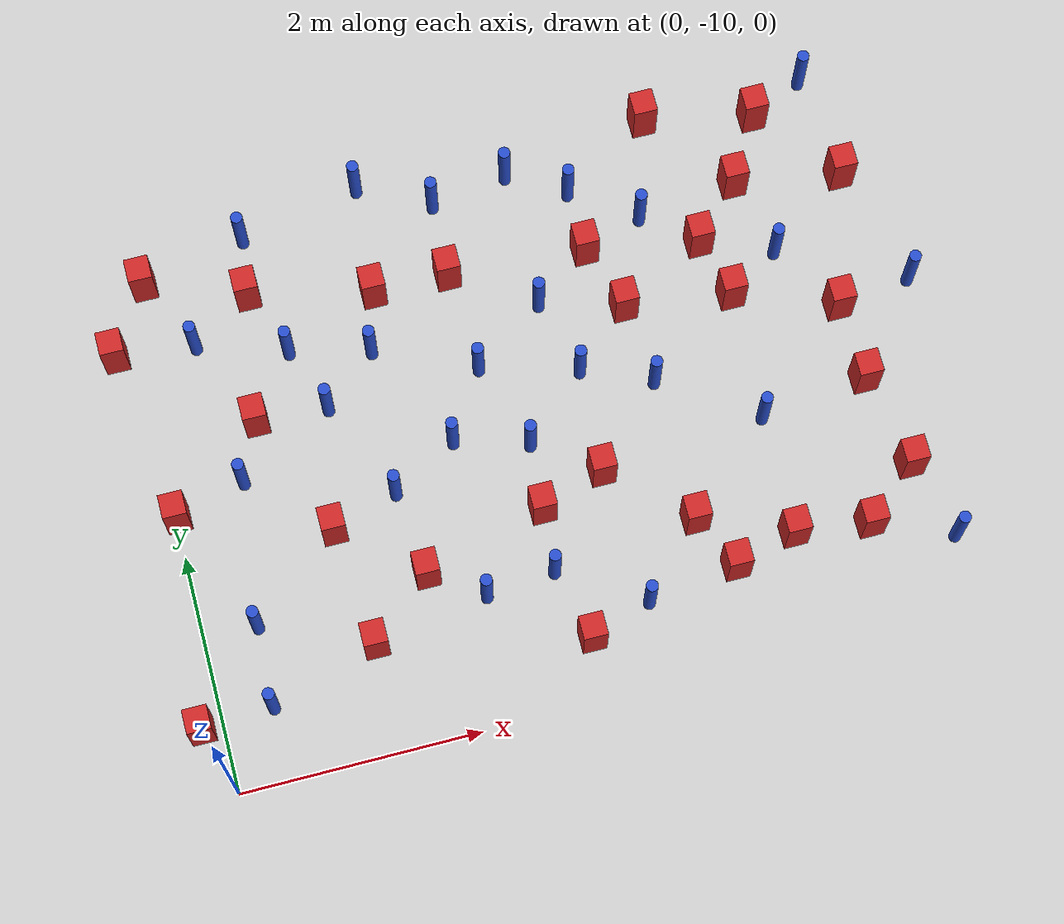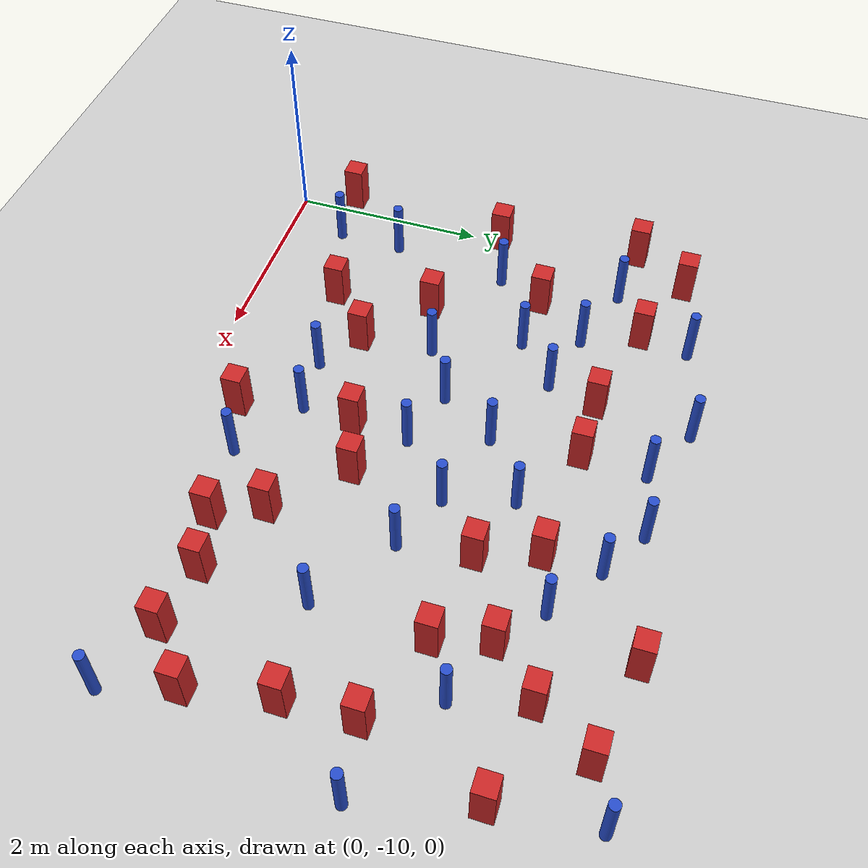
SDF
<sdf version="1.6">
 <world name="default">
  <model name="ground_plane">
   <static>1</static>
   <link name="link">
    <collision name="collision">
     <geometry><plane><normal>0 0 1</normal><size>100 100</size></plane></geometry>
     <surface><friction><ode><mu>100</mu><mu2>50</mu2></ode></friction></surface>
    </collision>
    <visual name="visual">
     <cast_shadows>0</cast_shadows>
     <geometry><plane><normal>0 0 1</normal><size>100 100</size></plane></geometry>
     <material>
      <ambient>1.0 1.0 1.0 1.0</ambient>
      <diffuse>0.8 0.8 0.8 1.0</diffuse>
      <specular>0.01 0.01 0.01 1.000000</specular>
     </material>
    </visual>
   </link>
  </model>
  <model name="square_post_obstacle7">
   <static>true</static>
   <pose>5.20359295091 -5.96778097333 -4.36207812815e-07 3.75137919937e-06 9.77721102514e-07 2.47381364184e-05</pose>
   <link name="link">
    <pose>0 0 0.25 0 -0 0</pose>
    <inertial>
     <mass>100</mass>
     <inertia>
      <ixx>0.166667</ixx>
      <ixy>0</ixy>
      <ixz>0</ixz>
      <iyy>0.166667</iyy>
      <iyz>0</iyz>
      <izz>0.166667</izz>
     </inertia>
    </inertial>
    <collision name="collision"><geometry><box><size>.2 .2 .5</size></box></geometry></collision>
    <visual name="visual">
     <geometry><box><size>.2 .2 .5</size></box></geometry>
     <material>
      <script><name>Gazebo/Red</name><uri>file://media/materials/scripts/gazebo.material</uri></script>
     </material>
    </visual>
   </link>
  </model>
  <model name="pole_obstacle10">
   <static>true</static>
   <pose>2.30417689854 -8.93807566385 -3.09024884848e-07 -7.19054271902e-07 -2.11315075199e-07 -1.93935509286e-07</pose>
   <link name="link">
    <pose>0 0 0.3 0 -0 0</pose>
    <inertial>
     <mass>1</mass>
     <inertia><ixx>0.145833</ixx><ixy>0</ixy><ixz>0</ixz><iyy>0.145833</iyy><iyz>0</iyz><izz>0.125</izz></inertia>
    </inertial>
    <collision name="collision">
     <geometry><cylinder><radius>0.05</radius><length>.6</length></cylinder></geometry>
    </collision>
    <visual name="visual">
     <geometry><cylinder><radius>0.05</radius><length>.6</length></cylinder></geometry>
     <material>
      <script><name>Gazebo/Blue</name><uri>file://media/materials/scripts/gazebo.material</uri></script>
     </material>
    </visual>
   </link>
  </model>
  <model name="pole_obstacle11">
   <static>true</static>
   <pose>0.478394050941 -6.26336523896 -3.09024884793e-07 -7.19054271912e-07 -2.11315075128e-07 -1.9393550926e-07</pose>
   <link name="link">
    <pose>0 0 0.3 0 -0 0</pose>
    <inertial>
     <mass>1</mass>
     <inertia><ixx>0.145833</ixx><ixy>0</ixy><ixz>0</ixz><iyy>0.145833</iyy><iyz>0</iyz><izz>0.125</izz></inertia>
    </inertial>
    <collision name="collision">
     <geometry><cylinder><radius>0.05</radius><length>.6</length></cylinder></geometry>
    </collision>
    <visual name="visual">
     <geometry><cylinder><radius>0.05</radius><length>.6</length></cylinder></geometry>
     <material>
      <script><name>Gazebo/Blue</name><uri>file://media/materials/scripts/gazebo.material</uri></script>
     </material>
    </visual>
   </link>
  </model>
  <model name="pole_obstacle13">
   <static>true</static>
   <pose>3.82998735341 -5.70305099585 -3.09024884793e-07 -7.19054271912e-07 -2.11315075134e-07 -1.93935509266e-07</pose>
   <link name="link">
    <pose>0 0 0.3 0 -0 0</pose>
    <inertial>
     <mass>1</mass>
     <inertia><ixx>0.145833</ixx><ixy>0</ixy><ixz>0</ixz><iyy>0.145833</iyy><iyz>0</iyz><izz>0.125</izz></inertia>
    </inertial>
    <collision name="collision">
     <geometry><cylinder><radius>0.05</radius><length>.6</length></cylinder></geometry>
    </collision>
    <visual name="visual">
     <geometry><cylinder><radius>0.05</radius><length>.6</length></cylinder></geometry>
     <material>
      <script><name>Gazebo/Blue</name><uri>file://media/materials/scripts/gazebo.material</uri></script>
     </material>
    </visual>
   </link>
  </model>
  <model name="square_post_obstacle23">
   <static>true</static>
   <pose>5.78915703853 -7.91855140705 -4.36207812815e-07 3.75137919937e-06 9.77721102514e-07 2.47381364184e-05</pose>
   <link name="link">
    <pose>0 0 0.25 0 -0 0</pose>
    <inertial>
     <mass>100</mass>
     <inertia>
      <ixx>0.166667</ixx>
      <ixy>0</ixy>
      <ixz>0</ixz>
      <iyy>0.166667</iyy>
      <iyz>0</iyz>
      <izz>0.166667</izz>
     </inertia>
    </inertial>
    <collision name="collision"><geometry><box><size>.2 .2 .5</size></box></geometry></collision>
    <visual name="visual">
     <geometry><box><size>.2 .2 .5</size></box></geometry>
     <material>
      <script><name>Gazebo/Red</name><uri>file://media/materials/scripts/gazebo.material</uri></script>
     </material>
    </visual>
   </link>
  </model>
  <model name="pole_obstacle17">
   <static>true</static>
   <pose>2.69220364741 -5.52727112073 -3.09024884793e-07 -7.19054271912e-07 -2.11315075134e-07 -1.93935509266e-07</pose>
   <link name="link">
    <pose>0 0 0.3 0 -0 0</pose>
    <inertial>
     <mass>1</mass>
     <inertia><ixx>0.145833</ixx><ixy>0</ixy><ixz>0</ixz><iyy>0.145833</iyy><iyz>0</iyz><izz>0.125</izz></inertia>
    </inertial>
    <collision name="collision">
     <geometry><cylinder><radius>0.05</radius><length>.6</length></cylinder></geometry>
    </collision>
    <visual name="visual">
     <geometry><cylinder><radius>0.05</radius><length>.6</length></cylinder></geometry>
     <material>
      <script><name>Gazebo/Blue</name><uri>file://media/materials/scripts/gazebo.material</uri></script>
     </material>
    </visual>
   </link>
  </model>
  <model name="square_post_obstacle28">
   <static>true</static>
   <pose>0.997454960169 -5.92725323505 -4.36207812815e-07 3.75137919937e-06 9.77721102514e-07 2.47381364184e-05</pose>
   <link name="link">
    <pose>0 0 0.25 0 -0 0</pose>
    <inertial>
     <mass>100</mass>
     <inertia>
      <ixx>0.166667</ixx>
      <ixy>0</ixy>
      <ixz>0</ixz>
      <iyy>0.166667</iyy>
      <iyz>0</iyz>
      <izz>0.166667</izz>
     </inertia>
    </inertial>
    <collision name="collision"><geometry><box><size>.2 .2 .5</size></box></geometry></collision>
    <visual name="visual">
     <geometry><box><size>.2 .2 .5</size></box></geometry>
     <material>
      <script><name>Gazebo/Red</name><uri>file://media/materials/scripts/gazebo.material</uri></script>
     </material>
    </visual>
   </link>
  </model>
  <model name="pole_obstacle32">
   <static>true</static>
   <pose>1.22012202831 -6.49995804793 -3.09024884793e-07 -7.19054271912e-07 -2.11315075134e-07 -1.93935509265e-07</pose>
   <link name="link">
    <pose>0 0 0.3 0 -0 0</pose>
    <inertial>
     <mass>1</mass>
     <inertia><ixx>0.145833</ixx><ixy>0</ixy><ixz>0</ixz><iyy>0.145833</iyy><iyz>0</iyz><izz>0.125</izz></inertia>
    </inertial>
    <collision name="collision">
     <geometry><cylinder><radius>0.05</radius><length>.6</length></cylinder></geometry>
    </collision>
    <visual name="visual">
     <geometry><cylinder><radius>0.05</radius><length>.6</length></cylinder></geometry>
     <material>
      <script><name>Gazebo/Blue</name><uri>file://media/materials/scripts/gazebo.material</uri></script>
     </material>
    </visual>
   </link>
  </model>
  <model name="pole_obstacle37">
   <static>true</static>
   <pose>2.09771087382 -5.22382036348 -3.09024884793e-07 -7.19054271912e-07 -2.11315075134e-07 -1.93935509266e-07</pose>
   <link name="link">
    <pose>0 0 0.3 0 -0 0</pose>
    <inertial>
     <mass>1</mass>
     <inertia><ixx>0.145833</ixx><ixy>0</ixy><ixz>0</ixz><iyy>0.145833</iyy><iyz>0</iyz><izz>0.125</izz></inertia>
    </inertial>
    <collision name="collision">
     <geometry><cylinder><radius>0.05</radius><length>.6</length></cylinder></geometry>
    </collision>
    <visual name="visual">
     <geometry><cylinder><radius>0.05</radius><length>.6</length></cylinder></geometry>
     <material>
      <script><name>Gazebo/Blue</name><uri>file://media/materials/scripts/gazebo.material</uri></script>
     </material>
    </visual>
   </link>
  </model>
  <model name="square_post_obstacle38">
   <static>true</static>
   <pose>3.83533088985 -6.24117521695 -4.36207812815e-07 3.75137919937e-06 9.77721102514e-07 2.47381364184e-05</pose>
   <link name="link">
    <pose>0 0 0.25 0 -0 0</pose>
    <inertial>
     <mass>100</mass>
     <inertia>
      <ixx>0.166667</ixx>
      <ixy>0</ixy>
      <ixz>0</ixz>
      <iyy>0.166667</iyy>
      <iyz>0</iyz>
      <izz>0.166667</izz>
     </inertia>
    </inertial>
    <collision name="collision"><geometry><box><size>.2 .2 .5</size></box></geometry></collision>
    <visual name="visual">
     <geometry><box><size>.2 .2 .5</size></box></geometry>
     <material>
      <script><name>Gazebo/Red</name><uri>file://media/materials/scripts/gazebo.material</uri></script>
     </material>
    </visual>
   </link>
  </model>
  <model name="square_post_obstacle54">
   <static>true</static>
   <pose>3.47289039859 -8.15258904208 -4.36207812815e-07 3.75137919937e-06 9.77721102514e-07 2.47381364184e-05</pose>
   <link name="link">
    <pose>0 0 0.25 0 -0 0</pose>
    <inertial>
     <mass>100</mass>
     <inertia>
      <ixx>0.166667</ixx>
      <ixy>0</ixy>
      <ixz>0</ixz>
      <iyy>0.166667</iyy>
      <iyz>0</iyz>
      <izz>0.166667</izz>
     </inertia>
    </inertial>
    <collision name="collision"><geometry><box><size>.2 .2 .5</size></box></geometry></collision>
    <visual name="visual">
     <geometry><box><size>.2 .2 .5</size></box></geometry>
     <material>
      <script><name>Gazebo/Red</name><uri>file://media/materials/scripts/gazebo.material</uri></script>
     </material>
    </visual>
   </link>
  </model>
  <model name="square_post_obstacle58">
   <static>true</static>
   <pose>6.1023084619 -6.11505757808 -4.36207812815e-07 3.75137919937e-06 9.77721102514e-07 2.47381364184e-05</pose>
   <link name="link">
    <pose>0 0 0.25 0 -0 0</pose>
    <inertial>
     <mass>100</mass>
     <inertia>
      <ixx>0.166667</ixx>
      <ixy>0</ixy>
      <ixz>0</ixz>
      <iyy>0.166667</iyy>
      <iyz>0</iyz>
      <izz>0.166667</izz>
     </inertia>
    </inertial>
    <collision name="collision"><geometry><box><size>.2 .2 .5</size></box></geometry></collision>
    <visual name="visual">
     <geometry><box><size>.2 .2 .5</size></box></geometry>
     <material>
      <script><name>Gazebo/Red</name><uri>file://media/materials/scripts/gazebo.material</uri></script>
     </material>
    </visual>
   </link>
  </model>
  <model name="pole_obstacle64">
   <static>true</static>
   <pose>3.34068840802 -6.61067060702 -3.09024884793e-07 -7.19054271912e-07 -2.11315075134e-07 -1.93935509266e-07</pose>
   <link name="link">
    <pose>0 0 0.3 0 -0 0</pose>
    <inertial>
     <mass>1</mass>
     <inertia><ixx>0.145833</ixx><ixy>0</ixy><ixz>0</ixz><iyy>0.145833</iyy><iyz>0</iyz><izz>0.125</izz></inertia>
    </inertial>
    <collision name="collision">
     <geometry><cylinder><radius>0.05</radius><length>.6</length></cylinder></geometry>
    </collision>
    <visual name="visual">
     <geometry><cylinder><radius>0.05</radius><length>.6</length></cylinder></geometry>
     <material>
      <script><name>Gazebo/Blue</name><uri>file://media/materials/scripts/gazebo.material</uri></script>
     </material>
    </visual>
   </link>
  </model>
  <model name="square_post_obstacle68">
   <static>true</static>
   <pose>1.33668838748 -9.10034123669 -4.36207812815e-07 3.75137919937e-06 9.77721102514e-07 2.47381364184e-05</pose>
   <link name="link">
    <pose>0 0 0.25 0 -0 0</pose>
    <inertial>
     <mass>100</mass>
     <inertia>
      <ixx>0.166667</ixx>
      <ixy>0</ixy>
      <ixz>0</ixz>
      <iyy>0.166667</iyy>
      <iyz>0</iyz>
      <izz>0.166667</izz>
     </inertia>
    </inertial>
    <collision name="collision"><geometry><box><size>.2 .2 .5</size></box></geometry></collision>
    <visual name="visual">
     <geometry><box><size>.2 .2 .5</size></box></geometry>
     <material>
      <script><name>Gazebo/Red</name><uri>file://media/materials/scripts/gazebo.material</uri></script>
     </material>
    </visual>
   </link>
  </model>
  <model name="square_post_obstacle71">
   <static>true</static>
   <pose>3.03948551087 -9.4839503843 -4.36207812815e-07 3.75137919937e-06 9.77721102514e-07 2.47381364184e-05</pose>
   <link name="link">
    <pose>0 0 0.25 0 -0 0</pose>
    <inertial>
     <mass>100</mass>
     <inertia>
      <ixx>0.166667</ixx>
      <ixy>0</ixy>
      <ixz>0</ixz>
      <iyy>0.166667</iyy>
      <iyz>0</iyz>
      <izz>0.166667</izz>
     </inertia>
    </inertial>
    <collision name="collision"><geometry><box><size>.2 .2 .5</size></box></geometry></collision>
    <visual name="visual">
     <geometry><box><size>.2 .2 .5</size></box></geometry>
     <material>
      <script><name>Gazebo/Red</name><uri>file://media/materials/scripts/gazebo.material</uri></script>
     </material>
    </visual>
   </link>
  </model>
  <model name="square_post_obstacle73">
   <static>true</static>
   <pose>0.173606080366 -5.62563306703 -4.36207812815e-07 3.75137919937e-06 9.77721102514e-07 2.47381364184e-05</pose>
   <link name="link">
    <pose>0 0 0.25 0 -0 0</pose>
    <inertial>
     <mass>100</mass>
     <inertia>
      <ixx>0.166667</ixx>
      <ixy>0</ixy>
      <ixz>0</ixz>
      <iyy>0.166667</iyy>
      <iyz>0</iyz>
      <izz>0.166667</izz>
     </inertia>
    </inertial>
    <collision name="collision"><geometry><box><size>.2 .2 .5</size></box></geometry></collision>
    <visual name="visual">
     <geometry><box><size>.2 .2 .5</size></box></geometry>
     <material>
      <script><name>Gazebo/Red</name><uri>file://media/materials/scripts/gazebo.material</uri></script>
     </material>
    </visual>
   </link>
  </model>
  <model name="square_post_obstacle75">
   <static>true</static>
   <pose>-0.170981337086 -9.43313442548 -4.36207812815e-07 3.75137919937e-06 9.77721102514e-07 2.47381364184e-05</pose>
   <link name="link">
    <pose>0 0 0.25 0 -0 0</pose>
    <inertial>
     <mass>100</mass>
     <inertia>
      <ixx>0.166667</ixx>
      <ixy>0</ixy>
      <ixz>0</ixz>
      <iyy>0.166667</iyy>
      <iyz>0</iyz>
      <izz>0.166667</izz>
     </inertia>
    </inertial>
    <collision name="collision"><geometry><box><size>.2 .2 .5</size></box></geometry></collision>
    <visual name="visual">
     <geometry><box><size>.2 .2 .5</size></box></geometry>
     <material>
      <script><name>Gazebo/Red</name><uri>file://media/materials/scripts/gazebo.material</uri></script>
     </material>
    </visual>
   </link>
  </model>
  <model name="pole_obstacle70">
   <static>true</static>
   <pose>2.35486851598 -7.60048989996 -3.09024884793e-07 -7.19054271912e-07 -2.11315075134e-07 -1.93935509266e-07</pose>
   <link name="link">
    <pose>0 0 0.3 0 -0 0</pose>
    <inertial>
     <mass>1</mass>
     <inertia><ixx>0.145833</ixx><ixy>0</ixy><ixz>0</ixz><iyy>0.145833</iyy><iyz>0</iyz><izz>0.125</izz></inertia>
    </inertial>
    <collision name="collision">
     <geometry><cylinder><radius>0.05</radius><length>.6</length></cylinder></geometry>
    </collision>
    <visual name="visual">
     <geometry><cylinder><radius>0.05</radius><length>.6</length></cylinder></geometry>
     <material>
      <script><name>Gazebo/Blue</name><uri>file://media/materials/scripts/gazebo.material</uri></script>
     </material>
    </visual>
   </link>
  </model>
  <model name="square_post_obstacle77">
   <static>true</static>
   <pose>1.87494999248 -8.63762688826 -4.36207812815e-07 3.75137919937e-06 9.77721102514e-07 2.47381364184e-05</pose>
   <link name="link">
    <pose>0 0 0.25 0 -0 0</pose>
    <inertial>
     <mass>100</mass>
     <inertia>
      <ixx>0.166667</ixx>
      <ixy>0</ixy>
      <ixz>0</ixz>
      <iyy>0.166667</iyy>
      <iyz>0</iyz>
      <izz>0.166667</izz>
     </inertia>
    </inertial>
    <collision name="collision"><geometry><box><size>.2 .2 .5</size></box></geometry></collision>
    <visual name="visual">
     <geometry><box><size>.2 .2 .5</size></box></geometry>
     <material>
      <script><name>Gazebo/Red</name><uri>file://media/materials/scripts/gazebo.material</uri></script>
     </material>
    </visual>
   </link>
  </model>
  <model name="square_post_obstacle78">
   <static>true</static>
   <pose>5.48002729427 -9.12491366476 -4.36207812815e-07 3.75137919937e-06 9.77721102514e-07 2.47381364184e-05</pose>
   <link name="link">
    <pose>0 0 0.25 0 -0 0</pose>
    <inertial>
     <mass>100</mass>
     <inertia>
      <ixx>0.166667</ixx>
      <ixy>0</ixy>
      <ixz>0</ixz>
      <iyy>0.166667</iyy>
      <iyz>0</iyz>
      <izz>0.166667</izz>
     </inertia>
    </inertial>
    <collision name="collision"><geometry><box><size>.2 .2 .5</size></box></geometry></collision>
    <visual name="visual">
     <geometry><box><size>.2 .2 .5</size></box></geometry>
     <material>
      <script><name>Gazebo/Red</name><uri>file://media/materials/scripts/gazebo.material</uri></script>
     </material>
    </visual>
   </link>
  </model>
  <model name="pole_obstacle81">
   <static>true</static>
   <pose>1.42364575662 -7.06414064167 -3.09024884793e-07 -7.19054271912e-07 -2.11315075134e-07 -1.93935509265e-07</pose>
   <link name="link">
    <pose>0 0 0.3 0 -0 0</pose>
    <inertial>
     <mass>1</mass>
     <inertia><ixx>0.145833</ixx><ixy>0</ixy><ixz>0</ixz><iyy>0.145833</iyy><iyz>0</iyz><izz>0.125</izz></inertia>
    </inertial>
    <collision name="collision">
     <geometry><cylinder><radius>0.05</radius><length>.6</length></cylinder></geometry>
    </collision>
    <visual name="visual">
     <geometry><cylinder><radius>0.05</radius><length>.6</length></cylinder></geometry>
     <material>
      <script><name>Gazebo/Blue</name><uri>file://media/materials/scripts/gazebo.material</uri></script>
     </material>
    </visual>
   </link>
  </model>
  <model name="pole_obstacle82">
   <static>true</static>
   <pose>2.96568162322 -7.78284467355 -3.09024884793e-07 -7.19054271912e-07 -2.11315075134e-07 -1.93935509266e-07</pose>
   <link name="link">
    <pose>0 0 0.3 0 -0 0</pose>
    <inertial>
     <mass>1</mass>
     <inertia><ixx>0.145833</ixx><ixy>0</ixy><ixz>0</ixz><iyy>0.145833</iyy><iyz>0</iyz><izz>0.125</izz></inertia>
    </inertial>
    <collision name="collision">
     <geometry><cylinder><radius>0.05</radius><length>.6</length></cylinder></geometry>
    </collision>
    <visual name="visual">
     <geometry><cylinder><radius>0.05</radius><length>.6</length></cylinder></geometry>
     <material>
      <script><name>Gazebo/Blue</name><uri>file://media/materials/scripts/gazebo.material</uri></script>
     </material>
    </visual>
   </link>
  </model>
  <model name="pole_obstacle83">
   <static>true</static>
   <pose>4.09866607526 -7.51092930694 -3.09024884793e-07 -7.19054271911e-07 -2.1131507516e-07 -1.93935509277e-07</pose>
   <link name="link">
    <pose>0 0 0.3 0 -0 0</pose>
    <inertial>
     <mass>1</mass>
     <inertia><ixx>0.145833</ixx><ixy>0</ixy><ixz>0</ixz><iyy>0.145833</iyy><iyz>0</iyz><izz>0.125</izz></inertia>
    </inertial>
    <collision name="collision">
     <geometry><cylinder><radius>0.05</radius><length>.6</length></cylinder></geometry>
    </collision>
    <visual name="visual">
     <geometry><cylinder><radius>0.05</radius><length>.6</length></cylinder></geometry>
     <material>
      <script><name>Gazebo/Blue</name><uri>file://media/materials/scripts/gazebo.material</uri></script>
     </material>
    </visual>
   </link>
  </model>
  <model name="pole_obstacle95">
   <static>true</static>
   <pose>6.13535505168 -9.39536549103 -3.09024884793e-07 -7.19054271912e-07 -2.1131507513e-07 -1.93935509261e-07</pose>
   <link name="link">
    <pose>0 0 0.3 0 -0 0</pose>
    <inertial>
     <mass>1</mass>
     <inertia><ixx>0.145833</ixx><ixy>0</ixy><ixz>0</ixz><iyy>0.145833</iyy><iyz>0</iyz><izz>0.125</izz></inertia>
    </inertial>
    <collision name="collision">
     <geometry><cylinder><radius>0.05</radius><length>.6</length></cylinder></geometry>
    </collision>
    <visual name="visual">
     <geometry><cylinder><radius>0.05</radius><length>.6</length></cylinder></geometry>
     <material>
      <script><name>Gazebo/Blue</name><uri>file://media/materials/scripts/gazebo.material</uri></script>
     </material>
    </visual>
   </link>
  </model>
  <model name="pole_obstacle108">
   <static>true</static>
   <pose>3.3511178617 -5.4221261235 -3.09024884793e-07 -7.19054271912e-07 -2.11315075134e-07 -1.93935509266e-07</pose>
   <link name="link">
    <pose>0 0 0.3 0 -0 0</pose>
    <inertial>
     <mass>1</mass>
     <inertia><ixx>0.145833</ixx><ixy>0</ixy><ixz>0</ixz><iyy>0.145833</iyy><iyz>0</iyz><izz>0.125</izz></inertia>
    </inertial>
    <collision name="collision">
     <geometry><cylinder><radius>0.05</radius><length>.6</length></cylinder></geometry>
    </collision>
    <visual name="visual">
     <geometry><cylinder><radius>0.05</radius><length>.6</length></cylinder></geometry>
     <material>
      <script><name>Gazebo/Blue</name><uri>file://media/materials/scripts/gazebo.material</uri></script>
     </material>
    </visual>
   </link>
  </model>
  <model name="square_post_obstacle97">
   <static>true</static>
   <pose>2.92126373814 -8.34471182677 -4.36207812815e-07 3.75137919937e-06 9.77721102514e-07 2.47381364184e-05</pose>
   <link name="link">
    <pose>0 0 0.25 0 -0 0</pose>
    <inertial>
     <mass>100</mass>
     <inertia>
      <ixx>0.166667</ixx>
      <ixy>0</ixy>
      <ixz>0</ixz>
      <iyy>0.166667</iyy>
      <iyz>0</iyz>
      <izz>0.166667</izz>
     </inertia>
    </inertial>
    <collision name="collision"><geometry><box><size>.2 .2 .5</size></box></geometry></collision>
    <visual name="visual">
     <geometry><box><size>.2 .2 .5</size></box></geometry>
     <material>
      <script><name>Gazebo/Red</name><uri>file://media/materials/scripts/gazebo.material</uri></script>
     </material>
    </visual>
   </link>
  </model>
  <model name="pole_obstacle117">
   <static>true</static>
   <pose>6.01056822029 -5.20128783218 -3.09024884793e-07 -7.19054271911e-07 -2.1131507516e-07 -1.93935509277e-07</pose>
   <link name="link">
    <pose>0 0 0.3 0 -0 0</pose>
    <inertial>
     <mass>1</mass>
     <inertia><ixx>0.145833</ixx><ixy>0</ixy><ixz>0</ixz><iyy>0.145833</iyy><iyz>0</iyz><izz>0.125</izz></inertia>
    </inertial>
    <collision name="collision">
     <geometry><cylinder><radius>0.05</radius><length>.6</length></cylinder></geometry>
    </collision>
    <visual name="visual">
     <geometry><cylinder><radius>0.05</radius><length>.6</length></cylinder></geometry>
     <material>
      <script><name>Gazebo/Blue</name><uri>file://media/materials/scripts/gazebo.material</uri></script>
     </material>
    </visual>
   </link>
  </model>
  <model name="square_post_obstacle114">
   <static>true</static>
   <pose>4.10735442113 -8.73773742254 -4.36207812815e-07 3.75137919937e-06 9.77721102514e-07 2.47381364184e-05</pose>
   <link name="link">
    <pose>0 0 0.25 0 -0 0</pose>
    <inertial>
     <mass>100</mass>
     <inertia>
      <ixx>0.166667</ixx>
      <ixy>0</ixy>
      <ixz>0</ixz>
      <iyy>0.166667</iyy>
      <iyz>0</iyz>
      <izz>0.166667</izz>
     </inertia>
    </inertial>
    <collision name="collision"><geometry><box><size>.2 .2 .5</size></box></geometry></collision>
    <visual name="visual">
     <geometry><box><size>.2 .2 .5</size></box></geometry>
     <material>
      <script><name>Gazebo/Red</name><uri>file://media/materials/scripts/gazebo.material</uri></script>
     </material>
    </visual>
   </link>
  </model>
  <model name="pole_obstacle133">
   <static>true</static>
   <pose>0.425055601831 -9.3988436451 -3.09024884793e-07 -7.19054271911e-07 -2.11315075166e-07 -1.93935509282e-07</pose>
   <link name="link">
    <pose>0 0 0.3 0 -0 0</pose>
    <inertial>
     <mass>1</mass>
     <inertia><ixx>0.145833</ixx><ixy>0</ixy><ixz>0</ixz><iyy>0.145833</iyy><iyz>0</iyz><izz>0.125</izz></inertia>
    </inertial>
    <collision name="collision">
     <geometry><cylinder><radius>0.05</radius><length>.6</length></cylinder></geometry>
    </collision>
    <visual name="visual">
     <geometry><cylinder><radius>0.05</radius><length>.6</length></cylinder></geometry>
     <material>
      <script><name>Gazebo/Blue</name><uri>file://media/materials/scripts/gazebo.material</uri></script>
     </material>
    </visual>
   </link>
  </model>
  <model name="square_post_obstacle118">
   <static>true</static>
   <pose>5.76127711303 -7.24571393052 -4.36207812815e-07 3.75137919937e-06 9.77721102514e-07 2.47381364184e-05</pose>
   <link name="link">
    <pose>0 0 0.25 0 -0 0</pose>
    <inertial>
     <mass>100</mass>
     <inertia>
      <ixx>0.166667</ixx>
      <ixy>0</ixy>
      <ixz>0</ixz>
      <iyy>0.166667</iyy>
      <iyz>0</iyz>
      <izz>0.166667</izz>
     </inertia>
    </inertial>
    <collision name="collision"><geometry><box><size>.2 .2 .5</size></box></geometry></collision>
    <visual name="visual">
     <geometry><box><size>.2 .2 .5</size></box></geometry>
     <material>
      <script><name>Gazebo/Red</name><uri>file://media/materials/scripts/gazebo.material</uri></script>
     </material>
    </visual>
   </link>
  </model>
  <model name="square_post_obstacle120">
   <static>true</static>
   <pose>0.821218037804 -7.02617085374 -4.36207812815e-07 3.75137919937e-06 9.77721102514e-07 2.47381364184e-05</pose>
   <link name="link">
    <pose>0 0 0.25 0 -0 0</pose>
    <inertial>
     <mass>100</mass>
     <inertia>
      <ixx>0.166667</ixx>
      <ixy>0</ixy>
      <ixz>0</ixz>
      <iyy>0.166667</iyy>
      <iyz>0</iyz>
      <izz>0.166667</izz>
     </inertia>
    </inertial>
    <collision name="collision"><geometry><box><size>.2 .2 .5</size></box></geometry></collision>
    <visual name="visual">
     <geometry><box><size>.2 .2 .5</size></box></geometry>
     <material>
      <script><name>Gazebo/Red</name><uri>file://media/materials/scripts/gazebo.material</uri></script>
     </material>
    </visual>
   </link>
  </model>
  <model name="pole_obstacle139">
   <static>true</static>
   <pose>1.8874667031 -6.66838567769 -3.09024884793e-07 -7.19054271912e-07 -2.11315075134e-07 -1.93935509265e-07</pose>
   <link name="link">
    <pose>0 0 0.3 0 -0 0</pose>
    <inertial>
     <mass>1</mass>
     <inertia><ixx>0.145833</ixx><ixy>0</ixy><ixz>0</ixz><iyy>0.145833</iyy><iyz>0</iyz><izz>0.125</izz></inertia>
    </inertial>
    <collision name="collision">
     <geometry><cylinder><radius>0.05</radius><length>.6</length></cylinder></geometry>
    </collision>
    <visual name="visual">
     <geometry><cylinder><radius>0.05</radius><length>.6</length></cylinder></geometry>
     <material>
      <script><name>Gazebo/Blue</name><uri>file://media/materials/scripts/gazebo.material</uri></script>
     </material>
    </visual>
   </link>
  </model>
  <model name="square_post_obstacle124">
   <static>true</static>
   <pose>5.94284907218 -8.72056437139 -4.36207812815e-07 3.75137919937e-06 9.77721102514e-07 2.47381364184e-05</pose>
   <link name="link">
    <pose>0 0 0.25 0 -0 0</pose>
    <inertial>
     <mass>100</mass>
     <inertia>
      <ixx>0.166667</ixx>
      <ixy>0</ixy>
      <ixz>0</ixz>
      <iyy>0.166667</iyy>
      <iyz>0</iyz>
      <izz>0.166667</izz>
     </inertia>
    </inertial>
    <collision name="collision"><geometry><box><size>.2 .2 .5</size></box></geometry></collision>
    <visual name="visual">
     <geometry><box><size>.2 .2 .5</size></box></geometry>
     <material>
      <script><name>Gazebo/Red</name><uri>file://media/materials/scripts/gazebo.material</uri></script>
     </material>
    </visual>
   </link>
  </model>
  <model name="pole_obstacle141">
   <static>true</static>
   <pose>4.8826966738 -8.03416124211 -3.09024884793e-07 -7.19054271911e-07 -2.11315075165e-07 -1.93935509282e-07</pose>
   <link name="link">
    <pose>0 0 0.3 0 -0 0</pose>
    <inertial>
     <mass>1</mass>
     <inertia><ixx>0.145833</ixx><ixy>0</ixy><ixz>0</ixz><iyy>0.145833</iyy><iyz>0</iyz><izz>0.125</izz></inertia>
    </inertial>
    <collision name="collision">
     <geometry><cylinder><radius>0.05</radius><length>.6</length></cylinder></geometry>
    </collision>
    <visual name="visual">
     <geometry><cylinder><radius>0.05</radius><length>.6</length></cylinder></geometry>
     <material>
      <script><name>Gazebo/Blue</name><uri>file://media/materials/scripts/gazebo.material</uri></script>
     </material>
    </visual>
   </link>
  </model>
  <model name="square_post_obstacle127">
   <static>true</static>
   <pose>2.66203422469 -6.1722122865 -4.36207812815e-07 3.75137919937e-06 9.77721102514e-07 2.47381364184e-05</pose>
   <link name="link">
    <pose>0 0 0.25 0 -0 0</pose>
    <inertial>
     <mass>100</mass>
     <inertia>
      <ixx>0.166667</ixx>
      <ixy>0</ixy>
      <ixz>0</ixz>
      <iyy>0.166667</iyy>
      <iyz>0</iyz>
      <izz>0.166667</izz>
     </inertia>
    </inertial>
    <collision name="collision"><geometry><box><size>.2 .2 .5</size></box></geometry></collision>
    <visual name="visual">
     <geometry><box><size>.2 .2 .5</size></box></geometry>
     <material>
      <script><name>Gazebo/Red</name><uri>file://media/materials/scripts/gazebo.material</uri></script>
     </material>
    </visual>
   </link>
  </model>
  <model name="pole_obstacle162">
   <static>true</static>
   <pose>2.71523961729 -7.03522632019 -3.09024884793e-07 -7.19054271912e-07 -2.11315075134e-07 -1.93935509266e-07</pose>
   <link name="link">
    <pose>0 0 0.3 0 -0 0</pose>
    <inertial>
     <mass>1</mass>
     <inertia><ixx>0.145833</ixx><ixy>0</ixy><ixz>0</ixz><iyy>0.145833</iyy><iyz>0</iyz><izz>0.125</izz></inertia>
    </inertial>
    <collision name="collision">
     <geometry><cylinder><radius>0.05</radius><length>.6</length></cylinder></geometry>
    </collision>
    <visual name="visual">
     <geometry><cylinder><radius>0.05</radius><length>.6</length></cylinder></geometry>
     <material>
      <script><name>Gazebo/Blue</name><uri>file://media/materials/scripts/gazebo.material</uri></script>
     </material>
    </visual>
   </link>
  </model>
  <model name="square_post_obstacle155">
   <static>true</static>
   <pose>4.91877980754 -6.93137027575 -4.36207812815e-07 3.75137919937e-06 9.77721102514e-07 2.47381364184e-05</pose>
   <link name="link">
    <pose>0 0 0.25 0 -0 0</pose>
    <inertial>
     <mass>100</mass>
     <inertia>
      <ixx>0.166667</ixx>
      <ixy>0</ixy>
      <ixz>0</ixz>
      <iyy>0.166667</iyy>
      <iyz>0</iyz>
      <izz>0.166667</izz>
     </inertia>
    </inertial>
    <collision name="collision"><geometry><box><size>.2 .2 .5</size></box></geometry></collision>
    <visual name="visual">
     <geometry><box><size>.2 .2 .5</size></box></geometry>
     <material>
      <script><name>Gazebo/Red</name><uri>file://media/materials/scripts/gazebo.material</uri></script>
     </material>
    </visual>
   </link>
  </model>
  <model name="square_post_obstacle160">
   <static>true</static>
   <pose>1.22892579208 -8.09098684145 -4.36207812815e-07 3.75137919937e-06 9.77721102514e-07 2.47381364184e-05</pose>
   <link name="link">
    <pose>0 0 0.25 0 -0 0</pose>
    <inertial>
     <mass>100</mass>
     <inertia>
      <ixx>0.166667</ixx>
      <ixy>0</ixy>
      <ixz>0</ixz>
      <iyy>0.166667</iyy>
      <iyz>0</iyz>
      <izz>0.166667</izz>
     </inertia>
    </inertial>
    <collision name="collision"><geometry><box><size>.2 .2 .5</size></box></geometry></collision>
    <visual name="visual">
     <geometry><box><size>.2 .2 .5</size></box></geometry>
     <material>
      <script><name>Gazebo/Red</name><uri>file://media/materials/scripts/gazebo.material</uri></script>
     </material>
    </visual>
   </link>
  </model>
  <model name="square_post_obstacle167">
   <static>true</static>
   <pose>4.60930319194 -5.22552196268 -4.36207812815e-07 3.75137919937e-06 9.77721102514e-07 2.47381364184e-05</pose>
   <link name="link">
    <pose>0 0 0.25 0 -0 0</pose>
    <inertial>
     <mass>100</mass>
     <inertia>
      <ixx>0.166667</ixx>
      <ixy>0</ixy>
      <ixz>0</ixz>
      <iyy>0.166667</iyy>
      <iyz>0</iyz>
      <izz>0.166667</izz>
     </inertia>
    </inertial>
    <collision name="collision"><geometry><box><size>.2 .2 .5</size></box></geometry></collision>
    <visual name="visual">
     <geometry><box><size>.2 .2 .5</size></box></geometry>
     <material>
      <script><name>Gazebo/Red</name><uri>file://media/materials/scripts/gazebo.material</uri></script>
     </material>
    </visual>
   </link>
  </model>
  <model name="pole_obstacle178">
   <static>true</static>
   <pose>4.35983524846 -6.07230800047 -3.09024884793e-07 -7.19054271911e-07 -2.1131507516e-07 -1.93935509277e-07</pose>
   <link name="link">
    <pose>0 0 0.3 0 -0 0</pose>
    <inertial>
     <mass>1</mass>
     <inertia><ixx>0.145833</ixx><ixy>0</ixy><ixz>0</ixz><iyy>0.145833</iyy><iyz>0</iyz><izz>0.125</izz></inertia>
    </inertial>
    <collision name="collision">
     <geometry><cylinder><radius>0.05</radius><length>.6</length></cylinder></geometry>
    </collision>
    <visual name="visual">
     <geometry><cylinder><radius>0.05</radius><length>.6</length></cylinder></geometry>
     <material>
      <script><name>Gazebo/Blue</name><uri>file://media/materials/scripts/gazebo.material</uri></script>
     </material>
    </visual>
   </link>
  </model>
  <model name="square_post_obstacle170">
   <static>true</static>
   <pose>-0.186093224492 -6.19112951383 -4.36207812815e-07 3.75137919937e-06 9.77721102514e-07 2.47381364184e-05</pose>
   <link name="link">
    <pose>0 0 0.25 0 -0 0</pose>
    <inertial>
     <mass>100</mass>
     <inertia>
      <ixx>0.166667</ixx>
      <ixy>0</ixy>
      <ixz>0</ixz>
      <iyy>0.166667</iyy>
      <iyz>0</iyz>
      <izz>0.166667</izz>
     </inertia>
    </inertial>
    <collision name="collision"><geometry><box><size>.2 .2 .5</size></box></geometry></collision>
    <visual name="visual">
     <geometry><box><size>.2 .2 .5</size></box></geometry>
     <material>
      <script><name>Gazebo/Red</name><uri>file://media/materials/scripts/gazebo.material</uri></script>
     </material>
    </visual>
   </link>
  </model>
  <model name="pole_obstacle183">
   <static>true</static>
   <pose>0.605345656092 -7.50884760729 -3.09024884793e-07 -7.19054271912e-07 -2.11315075129e-07 -1.93935509261e-07</pose>
   <link name="link">
    <pose>0 0 0.3 0 -0 0</pose>
    <inertial>
     <mass>1</mass>
     <inertia><ixx>0.145833</ixx><ixy>0</ixy><ixz>0</ixz><iyy>0.145833</iyy><iyz>0</iyz><izz>0.125</izz></inertia>
    </inertial>
    <collision name="collision">
     <geometry><cylinder><radius>0.05</radius><length>.6</length></cylinder></geometry>
    </collision>
    <visual name="visual">
     <geometry><cylinder><radius>0.05</radius><length>.6</length></cylinder></geometry>
     <material>
      <script><name>Gazebo/Blue</name><uri>file://media/materials/scripts/gazebo.material</uri></script>
     </material>
    </visual>
   </link>
  </model>
  <model name="square_post_obstacle172">
   <static>true</static>
   <pose>0.0169558777742 -7.67266662162 -4.36207812815e-07 3.75137919937e-06 9.77721102514e-07 2.47381364184e-05</pose>
   <link name="link">
    <pose>0 0 0.25 0 -0 0</pose>
    <inertial>
     <mass>100</mass>
     <inertia>
      <ixx>0.166667</ixx>
      <ixy>0</ixy>
      <ixz>0</ixz>
      <iyy>0.166667</iyy>
      <iyz>0</iyz>
      <izz>0.166667</izz>
     </inertia>
    </inertial>
    <collision name="collision"><geometry><box><size>.2 .2 .5</size></box></geometry></collision>
    <visual name="visual">
     <geometry><box><size>.2 .2 .5</size></box></geometry>
     <material>
      <script><name>Gazebo/Red</name><uri>file://media/materials/scripts/gazebo.material</uri></script>
     </material>
    </visual>
   </link>
  </model>
  <model name="pole_obstacle187">
   <static>true</static>
   <pose>0.448678972143 -8.72300861387 -3.09024884793e-07 -7.19054271911e-07 -2.11315075166e-07 -1.93935509282e-07</pose>
   <link name="link">
    <pose>0 0 0.3 0 -0 0</pose>
    <inertial>
     <mass>1</mass>
     <inertia><ixx>0.145833</ixx><ixy>0</ixy><ixz>0</ixz><iyy>0.145833</iyy><iyz>0</iyz><izz>0.125</izz></inertia>
    </inertial>
    <collision name="collision">
     <geometry><cylinder><radius>0.05</radius><length>.6</length></cylinder></geometry>
    </collision>
    <visual name="visual">
     <geometry><cylinder><radius>0.05</radius><length>.6</length></cylinder></geometry>
     <material>
      <script><name>Gazebo/Blue</name><uri>file://media/materials/scripts/gazebo.material</uri></script>
     </material>
    </visual>
   </link>
  </model>
  <model name="square_post_obstacle180">
   <static>true</static>
   <pose>2.02274628406 -6.17084768046 -4.36207812815e-07 3.75137919937e-06 9.77721102514e-07 2.47381364184e-05</pose>
   <link name="link">
    <pose>0 0 0.25 0 -0 0</pose>
    <inertial>
     <mass>100</mass>
     <inertia>
      <ixx>0.166667</ixx>
      <ixy>0</ixy>
      <ixz>0</ixz>
      <iyy>0.166667</iyy>
      <iyz>0</iyz>
      <izz>0.166667</izz>
     </inertia>
    </inertial>
    <collision name="collision"><geometry><box><size>.2 .2 .5</size></box></geometry></collision>
    <visual name="visual">
     <geometry><box><size>.2 .2 .5</size></box></geometry>
     <material>
      <script><name>Gazebo/Red</name><uri>file://media/materials/scripts/gazebo.material</uri></script>
     </material>
    </visual>
   </link>
  </model>
  <model name="square_post_obstacle184">
   <static>true</static>
   <pose>4.78153176914 -6.41139723117 -4.36207812815e-07 3.75137919937e-06 9.77721102514e-07 2.47381364184e-05</pose>
   <link name="link">
    <pose>0 0 0.25 0 -0 0</pose>
    <inertial>
     <mass>100</mass>
     <inertia>
      <ixx>0.166667</ixx>
      <ixy>0</ixy>
      <ixz>0</ixz>
      <iyy>0.166667</iyy>
      <iyz>0</iyz>
      <izz>0.166667</izz>
     </inertia>
    </inertial>
    <collision name="collision"><geometry><box><size>.2 .2 .5</size></box></geometry></collision>
    <visual name="visual">
     <geometry><box><size>.2 .2 .5</size></box></geometry>
     <material>
      <script><name>Gazebo/Red</name><uri>file://media/materials/scripts/gazebo.material</uri></script>
     </material>
    </visual>
   </link>
  </model>
  <model name="square_post_obstacle192">
   <static>true</static>
   <pose>4.32326261395 -9.19704252408 -4.36207812815e-07 3.75137919937e-06 9.77721102514e-07 2.47381364184e-05</pose>
   <link name="link">
    <pose>0 0 0.25 0 -0 0</pose>
    <inertial>
     <mass>100</mass>
     <inertia>
      <ixx>0.166667</ixx>
      <ixy>0</ixy>
      <ixz>0</ixz>
      <iyy>0.166667</iyy>
      <iyz>0</iyz>
      <izz>0.166667</izz>
     </inertia>
    </inertial>
    <collision name="collision"><geometry><box><size>.2 .2 .5</size></box></geometry></collision>
    <visual name="visual">
     <geometry><box><size>.2 .2 .5</size></box></geometry>
     <material>
      <script><name>Gazebo/Red</name><uri>file://media/materials/scripts/gazebo.material</uri></script>
     </material>
    </visual>
   </link>
  </model>
  <model name="square_post_obstacle195">
   <static>true</static>
   <pose>5.53071634301 -5.4159592236 -4.36207812815e-07 3.75137919937e-06 9.77721102514e-07 2.47381364184e-05</pose>
   <link name="link">
    <pose>0 0 0.25 0 -0 0</pose>
    <inertial>
     <mass>100</mass>
     <inertia>
      <ixx>0.166667</ixx>
      <ixy>0</ixy>
      <ixz>0</ixz>
      <iyy>0.166667</iyy>
      <iyz>0</iyz>
      <izz>0.166667</izz>
     </inertia>
    </inertial>
    <collision name="collision"><geometry><box><size>.2 .2 .5</size></box></geometry></collision>
    <visual name="visual">
     <geometry><box><size>.2 .2 .5</size></box></geometry>
     <material>
      <script><name>Gazebo/Red</name><uri>file://media/materials/scripts/gazebo.material</uri></script>
     </material>
    </visual>
   </link>
  </model>
  <model name="square_post_obstacle197">
   <static>true</static>
   <pose>4.02178388226 -6.81154746558 -4.36207812815e-07 3.75137919937e-06 9.77721102514e-07 2.47381364184e-05</pose>
   <link name="link">
    <pose>0 0 0.25 0 -0 0</pose>
    <inertial>
     <mass>100</mass>
     <inertia>
      <ixx>0.166667</ixx>
      <ixy>0</ixy>
      <ixz>0</ixz>
      <iyy>0.166667</iyy>
      <iyz>0</iyz>
      <izz>0.166667</izz>
     </inertia>
    </inertial>
    <collision name="collision"><geometry><box><size>.2 .2 .5</size></box></geometry></collision>
    <visual name="visual">
     <geometry><box><size>.2 .2 .5</size></box></geometry>
     <material>
      <script><name>Gazebo/Red</name><uri>file://media/materials/scripts/gazebo.material</uri></script>
     </material>
    </visual>
   </link>
  </model>
  <model name="pole_obstacle204">
   <static>true</static>
   <pose>3.5664121659 -9.31428880835 -3.09024884848e-07 -7.19054271902e-07 -2.11315075199e-07 -1.93935509286e-07</pose>
   <link name="link">
    <pose>0 0 0.3 0 -0 0</pose>
    <inertial>
     <mass>1</mass>
     <inertia><ixx>0.145833</ixx><ixy>0</ixy><ixz>0</ixz><iyy>0.145833</iyy><iyz>0</iyz><izz>0.125</izz></inertia>
    </inertial>
    <collision name="collision">
     <geometry><cylinder><radius>0.05</radius><length>.6</length></cylinder></geometry>
    </collision>
    <visual name="visual">
     <geometry><cylinder><radius>0.05</radius><length>.6</length></cylinder></geometry>
     <material>
      <script><name>Gazebo/Blue</name><uri>file://media/materials/scripts/gazebo.material</uri></script>
     </material>
    </visual>
   </link>
  </model>
  <model name="pole_obstacle213">
   <static>true</static>
   <pose>2.88606597409 -8.87917978203 -3.09024884848e-07 -7.19054271902e-07 -2.11315075199e-07 -1.93935509286e-07</pose>
   <link name="link">
    <pose>0 0 0.3 0 -0 0</pose>
    <inertial>
     <mass>1</mass>
     <inertia><ixx>0.145833</ixx><ixy>0</ixy><ixz>0</ixz><iyy>0.145833</iyy><iyz>0</iyz><izz>0.125</izz></inertia>
    </inertial>
    <collision name="collision">
     <geometry><cylinder><radius>0.05</radius><length>.6</length></cylinder></geometry>
    </collision>
    <visual name="visual">
     <geometry><cylinder><radius>0.05</radius><length>.6</length></cylinder></geometry>
     <material>
      <script><name>Gazebo/Blue</name><uri>file://media/materials/scripts/gazebo.material</uri></script>
     </material>
    </visual>
   </link>
  </model>
  <model name="pole_obstacle219">
   <static>true</static>
   <pose>6.4009567765 -7.16107470733 -3.09024884793e-07 -7.19054271911e-07 -2.1131507516e-07 -1.93935509277e-07</pose>
   <link name="link">
    <pose>0 0 0.3 0 -0 0</pose>
    <inertial>
     <mass>1</mass>
     <inertia><ixx>0.145833</ixx><ixy>0</ixy><ixz>0</ixz><iyy>0.145833</iyy><iyz>0</iyz><izz>0.125</izz></inertia>
    </inertial>
    <collision name="collision">
     <geometry><cylinder><radius>0.05</radius><length>.6</length></cylinder></geometry>
    </collision>
    <visual name="visual">
     <geometry><cylinder><radius>0.05</radius><length>.6</length></cylinder></geometry>
     <material>
      <script><name>Gazebo/Blue</name><uri>file://media/materials/scripts/gazebo.material</uri></script>
     </material>
    </visual>
   </link>
  </model>
  <model name="pole_obstacle223">
   <static>true</static>
   <pose>3.52419146524 -7.2668758713 -3.09024884793e-07 -7.19054271912e-07 -2.11315075134e-07 -1.93935509266e-07</pose>
   <link name="link">
    <pose>0 0 0.3 0 -0 0</pose>
    <inertial>
     <mass>1</mass>
     <inertia><ixx>0.145833</ixx><ixy>0</ixy><ixz>0</ixz><iyy>0.145833</iyy><iyz>0</iyz><izz>0.125</izz></inertia>
    </inertial>
    <collision name="collision">
     <geometry><cylinder><radius>0.05</radius><length>.6</length></cylinder></geometry>
    </collision>
    <visual name="visual">
     <geometry><cylinder><radius>0.05</radius><length>.6</length></cylinder></geometry>
     <material>
      <script><name>Gazebo/Blue</name><uri>file://media/materials/scripts/gazebo.material</uri></script>
     </material>
    </visual>
   </link>
  </model>
  <model name="square_post_obstacle208">
   <static>true</static>
   <pose>4.85522020167 -9.04766328895 -4.36207812815e-07 3.75137919937e-06 9.77721102514e-07 2.47381364184e-05</pose>
   <link name="link">
    <pose>0 0 0.25 0 -0 0</pose>
    <inertial>
     <mass>100</mass>
     <inertia>
      <ixx>0.166667</ixx>
      <ixy>0</ixy>
      <ixz>0</ixz>
      <iyy>0.166667</iyy>
      <iyz>0</iyz>
      <izz>0.166667</izz>
     </inertia>
    </inertial>
    <collision name="collision"><geometry><box><size>.2 .2 .5</size></box></geometry></collision>
    <visual name="visual">
     <geometry><box><size>.2 .2 .5</size></box></geometry>
     <material>
      <script><name>Gazebo/Red</name><uri>file://media/materials/scripts/gazebo.material</uri></script>
     </material>
    </visual>
   </link>
  </model>
  <model name="pole_obstacle227">
   <static>true</static>
   <pose>1.06392000976 -5.43024997922 -3.09024884793e-07 -7.19054271912e-07 -2.11315075134e-07 -1.93935509265e-07</pose>
   <link name="link">
    <pose>0 0 0.3 0 -0 0</pose>
    <inertial>
     <mass>1</mass>
     <inertia><ixx>0.145833</ixx><ixy>0</ixy><ixz>0</ixz><iyy>0.145833</iyy><iyz>0</iyz><izz>0.125</izz></inertia>
    </inertial>
    <collision name="collision">
     <geometry><cylinder><radius>0.05</radius><length>.6</length></cylinder></geometry>
    </collision>
    <visual name="visual">
     <geometry><cylinder><radius>0.05</radius><length>.6</length></cylinder></geometry>
     <material>
      <script><name>Gazebo/Blue</name><uri>file://media/materials/scripts/gazebo.material</uri></script>
     </material>
    </visual>
   </link>
  </model>
  <model name="pole_obstacle232">
   <static>true</static>
   <pose>1.79388000976 -7.91301997922 -3.09024884793e-07 -7.19054271912e-07 -2.11315075132e-07 -1.93935509264e-07</pose>
   <link name="link">
    <pose>0 0 0.3 0 -0 0</pose>
    <inertial>
     <mass>1</mass>
     <inertia><ixx>0.145833</ixx><ixy>0</ixy><ixz>0</ixz><iyy>0.145833</iyy><iyz>0</iyz><izz>0.125</izz></inertia>
    </inertial>
    <collision name="collision">
     <geometry><cylinder><radius>0.05</radius><length>.6</length></cylinder></geometry>
    </collision>
    <visual name="visual">
     <geometry><cylinder><radius>0.05</radius><length>.6</length></cylinder></geometry>
     <material>
      <script><name>Gazebo/Blue</name><uri>file://media/materials/scripts/gazebo.material</uri></script>
     </material>
    </visual>
   </link>
  </model>
  <model name="pole_obstacle235">
   <static>true</static>
   <pose>5.38069000976 -6.64975997922 -3.09024884793e-07 -7.19054271911e-07 -2.1131507516e-07 -1.93935509277e-07</pose>
   <link name="link">
    <pose>0 0 0.3 0 -0 0</pose>
    <inertial>
     <mass>1</mass>
     <inertia><ixx>0.145833</ixx><ixy>0</ixy><ixz>0</ixz><iyy>0.145833</iyy><iyz>0</iyz><izz>0.125</izz></inertia>
    </inertial>
    <collision name="collision">
     <geometry><cylinder><radius>0.05</radius><length>.6</length></cylinder></geometry>
    </collision>
    <visual name="visual">
     <geometry><cylinder><radius>0.05</radius><length>.6</length></cylinder></geometry>
     <material>
      <script><name>Gazebo/Blue</name><uri>file://media/materials/scripts/gazebo.material</uri></script>
     </material>
    </visual>
   </link>
  </model>
 </world>
</sdf>
